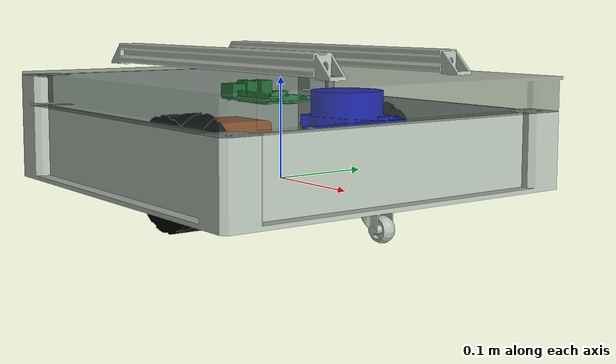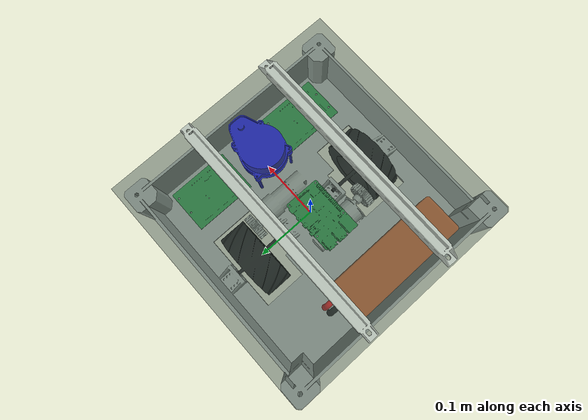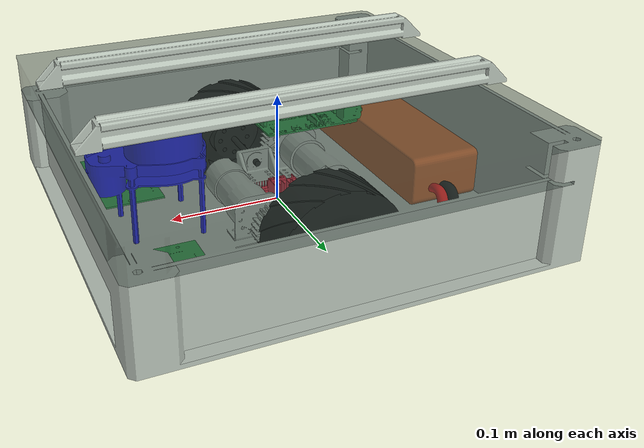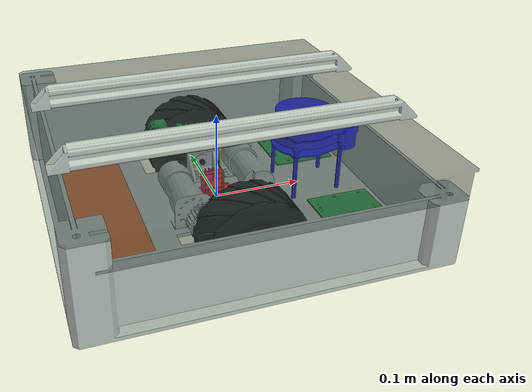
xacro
<?xml version="1.0" ?>
<robot name="mr_robot" xmlns:xacro="http://www.ros.org/wiki/xacro">

<xacro:include filename="$(find mr_robot_description)/urdf/materials.xacro" />
<xacro:include filename="$(find mr_robot_description)/urdf/mr_robot.trans" />
<xacro:include filename="$(find mr_robot_description)/urdf/mr_robot.gazebo" />
<link name="base_link">
  <inertial>
    <origin xyz="-0.013574303125599586 0.000311968832464644 0.02447814861373481" rpy="0 0 0"/>
    <mass value="12.51762642347825"/>
    <inertia ixx="0.228696" iyy="0.23871" izz="0.447823" ixy="-0.001289" iyz="3.7e-05" ixz="0.009889"/>
  </inertial>
  <visual>
    <origin xyz="0 0 0" rpy="0 0 0"/>
    <geometry>
      <mesh filename="package://mr_robot_description/meshes/base_link.stl" scale="0.001 0.001 0.001"/>
    </geometry>
    <material name="silver"/>
  </visual>
  <collision>
    <origin xyz="0 0 0" rpy="0 0 0"/>
    <geometry>
      <mesh filename="package://mr_robot_description/meshes/base_link.stl" scale="0.001 0.001 0.001"/>
    </geometry>
  </collision>
</link>

<link name="lidar_1">
  <inertial>
    <origin xyz="-0.08827260531446418 0.001000000201164283 0.07100205735814664" rpy="0 0 0"/>
    <mass value="1.1655252594710734"/>
    <inertia ixx="0.000543" iyy="0.000915" izz="0.001009" ixy="0.0" iyz="0.0" ixz="-0.000147"/>
  </inertial>
  <visual>
    <origin xyz="-0.1035 -0.0 -0.08" rpy="0 0 0"/>
    <geometry>
      <mesh filename="package://mr_robot_description/meshes/lidar_1.stl" scale="0.001 0.001 0.001"/>
    </geometry>
    <material name="blue"/>
  </visual>
  <collision>
    <origin xyz="-0.1035 -0.0 -0.08" rpy="0 0 0"/>
    <geometry>
      <mesh filename="package://mr_robot_description/meshes/lidar_1.stl" scale="0.001 0.001 0.001"/>
    </geometry>
  </collision>
</link>

<link name="motor_driver_1">
  <inertial>
    <origin xyz="0.0003955010685048353 0.00213711267527277 0.0064417706089128545" rpy="0 0 0"/>
    <mass value="0.05766626670761933"/>
    <inertia ixx="1.2e-05" iyy="9e-06" izz="1.5e-05" ixy="0.0" iyz="-2e-06" ixz="0.0"/>
  </inertial>
  <visual>
    <origin xyz="-0.0 -0.0 0.0" rpy="0 0 0"/>
    <geometry>
      <mesh filename="package://mr_robot_description/meshes/motor_driver_1.stl" scale="0.001 0.001 0.001"/>
    </geometry>
    <material name="dark_red"/>
  </visual>
  <collision>
    <origin xyz="-0.0 -0.0 0.0" rpy="0 0 0"/>
    <geometry>
      <mesh filename="package://mr_robot_description/meshes/motor_driver_1.stl" scale="0.001 0.001 0.001"/>
    </geometry>
  </collision>
</link>

<link name="PCB_1_1">
  <inertial>
    <origin xyz="-0.03640860143697952 0.05644244297723344 0.0007999999999997279" rpy="0 0 0"/>
    <mass value="0.09316520405438372"/>
    <inertia ixx="8.2e-05" iyy="4.1e-05" izz="0.000123" ixy="0.0" iyz="-0.0" ixz="0.0"/>
  </inertial>
  <visual>
    <origin xyz="-0.16625 0.15 0.0" rpy="0 0 0"/>
    <geometry>
      <mesh filename="package://mr_robot_description/meshes/PCB_1_1.stl" scale="0.001 0.001 0.001"/>
    </geometry>
    <material name="green"/>
  </visual>
  <collision>
    <origin xyz="-0.16625 0.15 0.0" rpy="0 0 0"/>
    <geometry>
      <mesh filename="package://mr_robot_description/meshes/PCB_1_1.stl" scale="0.001 0.001 0.001"/>
    </geometry>
  </collision>
</link>

<link name="PCB__1">
  <inertial>
    <origin xyz="-0.03643399332513472 -0.05640958374120579 0.0008000000000003021" rpy="0 0 0"/>
    <mass value="0.09316520405438372"/>
    <inertia ixx="8.2e-05" iyy="4.1e-05" izz="0.000123" ixy="0.0" iyz="-0.0" ixz="0.0"/>
  </inertial>
  <visual>
    <origin xyz="-0.16625 -0.15 -0.0" rpy="0 0 0"/>
    <geometry>
      <mesh filename="package://mr_robot_description/meshes/PCB__1.stl" scale="0.001 0.001 0.001"/>
    </geometry>
    <material name="green"/>
  </visual>
  <collision>
    <origin xyz="-0.16625 -0.15 -0.0" rpy="0 0 0"/>
    <geometry>
      <mesh filename="package://mr_robot_description/meshes/PCB__1.stl" scale="0.001 0.001 0.001"/>
    </geometry>
  </collision>
</link>

<link name="tyre_l_1">
  <inertial>
    <origin xyz="4.137530711784392e-07 -0.03712255732102415 -1.2111881497745003e-07" rpy="0 0 0"/>
    <mass value="1.983568904838765"/>
    <inertia ixx="0.002221" iyy="0.003828" izz="0.002221" ixy="-0.0" iyz="0.0" ixz="-0.0"/>
  </inertial>
  <visual>
    <origin xyz="-0.000791 -0.147386 -0.014723" rpy="0 0 0"/>
    <geometry>
      <mesh filename="package://mr_robot_description/meshes/tyre_l_1.stl" scale="0.001 0.001 0.001"/>
    </geometry>
    <material name="black"/>
  </visual>
  <collision>
    <origin xyz="-0.000791 -0.147386 -0.014723" rpy="0 0 0"/>
    <geometry>
      <mesh filename="package://mr_robot_description/meshes/tyre_l_1.stl" scale="0.001 0.001 0.001"/>
    </geometry>
  </collision>
</link>

<link name="tyre_r_1">
  <inertial>
    <origin xyz="-4.1375306849186755e-07 0.03716672560547965 -1.211188152480669e-07" rpy="0 0 0"/>
    <mass value="1.9850106278661588"/>
    <inertia ixx="0.002226" iyy="0.003828" izz="0.002226" ixy="0.0" iyz="-0.0" ixz="0.0"/>
  </inertial>
  <visual>
    <origin xyz="-0.000109 0.147386 -0.014723" rpy="0 0 0"/>
    <geometry>
      <mesh filename="package://mr_robot_description/meshes/tyre_r_1.stl" scale="0.001 0.001 0.001"/>
    </geometry>
    <material name="black"/>
  </visual>
  <collision>
    <origin xyz="-0.000109 0.147386 -0.014723" rpy="0 0 0"/>
    <geometry>
      <mesh filename="package://mr_robot_description/meshes/tyre_r_1.stl" scale="0.001 0.001 0.001"/>
    </geometry>
  </collision>
</link>

<link name="LiPo_3S_v2_1">
  <inertial>
    <origin xyz="0.03620000000000145 -0.03991462047942949 0.022424999999999796" rpy="0 0 0"/>
    <mass value="1.1316523601774637"/>
    <inertia ixx="0.004185" iyy="0.000601" izz="0.004409" ixy="-0.0" iyz="-0.0" ixz="0.0"/>
  </inertial>
  <visual>
    <origin xyz="0.173 0.0 0.0" rpy="0 0 0"/>
    <geometry>
      <mesh filename="package://mr_robot_description/meshes/LiPo_3S_v2_1.stl" scale="0.001 0.001 0.001"/>
    </geometry>
    <material name="orange"/>
  </visual>
  <collision>
    <origin xyz="0.173 0.0 0.0" rpy="0 0 0"/>
    <geometry>
      <mesh filename="package://mr_robot_description/meshes/LiPo_3S_v2_1.stl" scale="0.001 0.001 0.001"/>
    </geometry>
  </collision>
</link>

<link name="red_wire_1">
  <inertial>
    <origin xyz="-0.05960107486890705 0.0026232397316060113 0.012078506761870507" rpy="0 0 0"/>
    <mass value="0.016199442069398183"/>
    <inertia ixx="1e-06" iyy="1e-06" izz="1e-06" ixy="0.0" iyz="0.0" ixz="0.0"/>
  </inertial>
  <visual>
    <origin xyz="0.064 -0.073886 -0.0" rpy="0 0 0"/>
    <geometry>
      <mesh filename="package://mr_robot_description/meshes/red_wire_1.stl" scale="0.001 0.001 0.001"/>
    </geometry>
    <material name="red"/>
  </visual>
  <collision>
    <origin xyz="0.064 -0.073886 -0.0" rpy="0 0 0"/>
    <geometry>
      <mesh filename="package://mr_robot_description/meshes/red_wire_1.stl" scale="0.001 0.001 0.001"/>
    </geometry>
  </collision>
</link>

<link name="black_wire_1">
  <inertial>
    <origin xyz="-0.07060107486890682 0.002623239731605942 0.012078506761870535" rpy="0 0 0"/>
    <mass value="0.016199442069398183"/>
    <inertia ixx="1e-06" iyy="1e-06" izz="1e-06" ixy="0.0" iyz="0.0" ixz="0.0"/>
  </inertial>
  <visual>
    <origin xyz="0.064 -0.073886 -0.0" rpy="0 0 0"/>
    <geometry>
      <mesh filename="package://mr_robot_description/meshes/black_wire_1.stl" scale="0.001 0.001 0.001"/>
    </geometry>
    <material name="black"/>
  </visual>
  <collision>
    <origin xyz="0.064 -0.073886 -0.0" rpy="0 0 0"/>
    <geometry>
      <mesh filename="package://mr_robot_description/meshes/black_wire_1.stl" scale="0.001 0.001 0.001"/>
    </geometry>
  </collision>
</link>

<link name="upper_panel_1">
  <inertial>
    <origin xyz="-0.16981107647233692 -0.1874964863522696 0.01845928079506233" rpy="0 0 0"/>
    <mass value="7.649753398983414"/>
    <inertia ixx="0.111429" iyy="0.097265" izz="0.205922" ixy="1.5e-05" iyz="-5e-06" ixz="0.001292"/>
  </inertial>
  <visual>
    <origin xyz="-0.187506 -0.187494 -0.07" rpy="0 0 0"/>
    <geometry>
      <mesh filename="package://mr_robot_description/meshes/upper_panel_1.stl" scale="0.001 0.001 0.001"/>
    </geometry>
    <material name="translucent"/>
  </visual>
  <collision>
    <origin xyz="-0.187506 -0.187494 -0.07" rpy="0 0 0"/>
    <geometry>
      <mesh filename="package://mr_robot_description/meshes/upper_panel_1.stl" scale="0.001 0.001 0.001"/>
    </geometry>
  </collision>
</link>

<link name="RPi4ModelB_1">
  <inertial>
    <origin xyz="-0.037026936530551585 -0.000544166088421207 0.08100406173018841" rpy="0 0 0"/>
    <mass value="0.04363865099595201"/>
    <inertia ixx="1.3e-05" iyy="3e-05" izz="4e-05" ixy="0.0" iyz="-0.0" ixz="3e-06"/>
  </inertial>
  <visual>
    <origin xyz="-0.0 -0.0 -0.0" rpy="0 0 0"/>
    <geometry>
      <mesh filename="package://mr_robot_description/meshes/RPi4ModelB_1.stl" scale="0.001 0.001 0.001"/>
    </geometry>
    <material name="green"/>
  </visual>
  <collision>
    <origin xyz="-0.0 -0.0 -0.0" rpy="0 0 0"/>
    <geometry>
      <mesh filename="package://mr_robot_description/meshes/RPi4ModelB_1.stl" scale="0.001 0.001 0.001"/>
    </geometry>
  </collision>
</link>

<link name="V_Slot_1">
  <inertial>
    <origin xyz="4.426146948954823e-15 -0.16213021189797977 0.11568032411813599" rpy="0 0 0"/>
    <mass value="0.9613817576893465"/>
    <inertia ixx="0.004833" iyy="0.010478" izz="0.015232" ixy="0.0" iyz="-0.0" ixz="0.0"/>
  </inertial>
  <visual>
    <origin xyz="-0.001 -0.071886 -0.1143" rpy="0 0 0"/>
    <geometry>
      <mesh filename="package://mr_robot_description/meshes/V_Slot_1.stl" scale="0.001 0.001 0.001"/>
    </geometry>
    <material name="silver"/>
  </visual>
  <collision>
    <origin xyz="-0.001 -0.071886 -0.1143" rpy="0 0 0"/>
    <geometry>
      <mesh filename="package://mr_robot_description/meshes/V_Slot_1.stl" scale="0.001 0.001 0.001"/>
    </geometry>
  </collision>
</link>

<joint name="Rigid 26" type="fixed">
  <origin xyz="0.1035 0.0 0.08" rpy="0 0 3.14"/>
  <parent link="base_link"/>
  <child link="lidar_1"/>
</joint>

<joint name="Rigid 41" type="fixed">
  <origin xyz="0.0 0.0 0.0" rpy="0 0 0"/>
  <parent link="base_link"/>
  <child link="motor_driver_1"/>
</joint>

<joint name="Rigid 42" type="fixed">
  <origin xyz="0.16625 -0.15 0.0" rpy="0 0 0"/>
  <parent link="base_link"/>
  <child link="PCB_1_1"/>
</joint>

<joint name="Rigid 43" type="fixed">
  <origin xyz="0.16625 0.15 0.0" rpy="0 0 0"/>
  <parent link="base_link"/>
  <child link="PCB__1"/>
</joint>

<joint name="Revolute 10" type="continuous">
  <origin xyz="0.000791 0.147386 0.014723" rpy="0 0 0"/>
  <parent link="base_link"/>
  <child link="tyre_l_1"/>
  <axis xyz="-0.0 1.0 -0.0"/>
</joint>

<joint name="Revolute 9" type="continuous">
  <origin xyz="0.000109 -0.147386 0.014723" rpy="0 0 0"/>
  <parent link="base_link"/>
  <child link="tyre_r_1"/>
  <axis xyz="0.0 1.0 -0.0"/>
</joint>

<joint name="Rigid 53" type="fixed">
  <origin xyz="-0.173 0.0 0.0" rpy="0 0 0"/>
  <parent link="base_link"/>
  <child link="LiPo_3S_v2_1"/>
</joint>

<joint name="Rigid 60" type="fixed">
  <origin xyz="-0.064 0.073886 0.0" rpy="0 0 0"/>
  <parent link="base_link"/>
  <child link="red_wire_1"/>
</joint>

<joint name="Rigid 61" type="fixed">
  <origin xyz="-0.064 0.073886 0.0" rpy="0 0 0"/>
  <parent link="base_link"/>
  <child link="black_wire_1"/>
</joint>

<joint name="Rigid 62" type="fixed">
  <origin xyz="0.187506 0.187494 0.07" rpy="0 0 0"/>
  <parent link="base_link"/>
  <child link="upper_panel_1"/>
</joint>

<joint name="Rigid 63" type="fixed">
  <origin xyz="0.0 0.0 0.0" rpy="0 0 0"/>
  <parent link="base_link"/>
  <child link="RPi4ModelB_1"/>
</joint>

<joint name="Rigid 64" type="fixed">
  <origin xyz="0.001 0.062886 0.1143" rpy="0 0 0"/>
  <parent link="base_link"/>
  <child link="V_Slot_1"/>
</joint>

</robot>

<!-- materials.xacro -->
<robot name="mr_robot" xmlns:xacro="http://www.ros.org/wiki/xacro" >

<material name="silver">
  <color rgba="0.700 0.740 0.700 1.000"/>
</material>
<material name="translucent">
  <color rgba="0.27 0.33 0.3 0.5"/>
</material>
<material name="black">
  <color rgba="0 0 0 1"/>
</material>
<material name="dark_grey">
  <color rgba="0.24 0.26 0.24 1"/>
</material>
<material name="blue">
  <color rgba="0 0 1 1"/>
</material>
<material name="orange">
  <color rgba="0.8 0.35 0.10  1"/>
</material>
<material name="red">
  <color rgba="1 0 0 1"/>
</material>
<material name="green">
  <color rgba="0.08 0.6 0.21 1"/>
</material>
<material name="dark_red">
  <color rgba="1 0.08 0.2 1"/>
</material>
<material name="white">
  <color rgba="1 1 1  1"/>
</material>

</robot>
